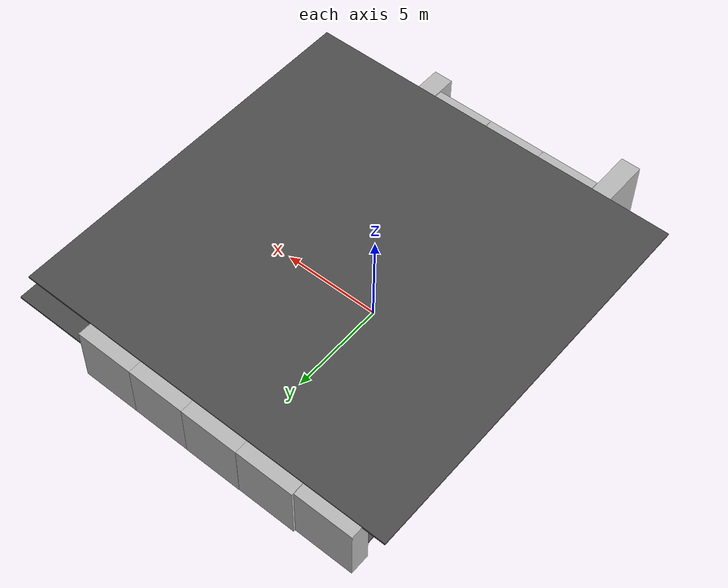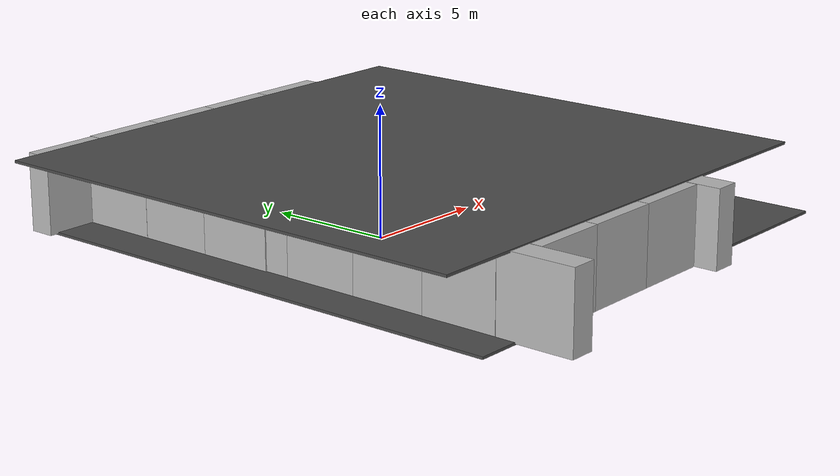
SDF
<sdf version="1.6">
 <world name="default">
  <light name="sun" type="directional">
   <pose>0 0 10 0 -0 0</pose>
   <diffuse>0.8 0.8 0.8 1</diffuse>
   <specular>0.2 0.2 0.2 1</specular>
   <attenuation>
    <range>1000</range>
    <constant>0.9</constant>
    <linear>0.01</linear>
    <quadratic>0.001</quadratic>
   </attenuation>
   <direction>-0.5 0.1 -0.9</direction>
  </light>
  <plugin name="ros_interface_plugin" filename="librotors_gazebo_ros_interface_plugin.so"/>
  <physics name="default_physics" default="0" type="ode">
   <ode>
    <solver>
     <type>quick</type>
     <iters>1000</iters>
     <sor>1.3</sor>
     <use_dynamic_moi_rescaling>0</use_dynamic_moi_rescaling>
    </solver>
    <constraints>
     <cfm>0</cfm>
     <erp>0.2</erp>
     <contact_max_correcting_vel>100</contact_max_correcting_vel>
     <contact_surface_layer>0.001</contact_surface_layer>
    </constraints>
   </ode>
   <max_step_size>0.01</max_step_size>
   <real_time_factor>1</real_time_factor>
   <real_time_update_rate>100</real_time_update_rate>
  </physics>
  <scene><ambient>0.4 0.4 0.4 1</ambient><background>0.7 0.7 0.7 1</background><shadows>1</shadows></scene>
  <spherical_coordinates>
   <surface_model>EARTH_WGS84</surface_model>
   <latitude_deg>0</latitude_deg>
   <longitude_deg>0</longitude_deg>
   <elevation>0</elevation>
   <heading_deg>0</heading_deg>
  </spherical_coordinates>
  <model name="asphalt_plane">
   <static>1</static>
   <link name="link">
    <collision name="collision"><geometry><box><size>20 20 0.1</size></box></geometry></collision>
    <visual name="visual">
     <cast_shadows>0</cast_shadows>
     <geometry><box><size>20 20 0.1</size></box></geometry>
     <material>
      <script>
       <uri>model://asphalt_plane/materials/scripts</uri>
       <uri>model://asphalt_plane/materials/textures</uri>
       <name>vrc/asphalt</name>
      </script>
     </material>
    </visual>
    <velocity_decay><linear>0</linear><angular>0</angular></velocity_decay>
   </link>
   <pose>2.83897 -0.323315 0 0 -0 0</pose>
  </model>
  <model name="brick_box_3x1x3">
   <static>1</static>
   <link name="chassis">
    <pose>0 0 1.5 0 -0 0</pose>
    <collision name="collision"><geometry><box><size>3 1 3</size></box></geometry></collision>
    <visual name="visual">
     <geometry><mesh><uri>model://brick_box_3x1x3/meshes/simple_box.dae</uri><scale>3 1 3</scale></mesh></geometry>
     <material>
      <script>
       <uri>model://brick_box_3x1x3/materials/scripts</uri>
       <uri>model://brick_box_3x1x3/materials/textures</uri>
       <name>BrickBox/Diffuse</name>
      </script>
     </material>
    </visual>
    <velocity_decay><linear>0</linear><angular>0</angular></velocity_decay>
   </link>
   <pose>0.002481 10.1046 0 0 -0 0</pose>
  </model>
  <model name="brick_box_3x1x3_0">
   <static>1</static>
   <link name="chassis">
    <pose>0 0 1.5 0 -0 0</pose>
    <collision name="collision"><geometry><box><size>3 1 3</size></box></geometry></collision>
    <visual name="visual">
     <geometry><mesh><uri>model://brick_box_3x1x3/meshes/simple_box.dae</uri><scale>3 1 3</scale></mesh></geometry>
     <material>
      <script>
       <uri>model://brick_box_3x1x3/materials/scripts</uri>
       <uri>model://brick_box_3x1x3/materials/textures</uri>
       <name>BrickBox/Diffuse</name>
      </script>
     </material>
    </visual>
    <velocity_decay><linear>0</linear><angular>0</angular></velocity_decay>
   </link>
   <pose>3 10.0982 0 0 -0 0</pose>
  </model>
  <model name="brick_box_3x1x3_1">
   <static>1</static>
   <link name="chassis">
    <pose>0 0 1.5 0 -0 0</pose>
    <collision name="collision"><geometry><box><size>3 1 3</size></box></geometry></collision>
    <visual name="visual">
     <geometry><mesh><uri>model://brick_box_3x1x3/meshes/simple_box.dae</uri><scale>3 1 3</scale></mesh></geometry>
     <material>
      <script>
       <uri>model://brick_box_3x1x3/materials/scripts</uri>
       <uri>model://brick_box_3x1x3/materials/textures</uri>
       <name>BrickBox/Diffuse</name>
      </script>
     </material>
    </visual>
    <velocity_decay><linear>0</linear><angular>0</angular></velocity_decay>
   </link>
   <pose>6 10.0991 0 0 -0 0</pose>
  </model>
  <model name="brick_box_3x1x3_2">
   <static>1</static>
   <link name="chassis">
    <pose>0 0 1.5 0 -0 0</pose>
    <collision name="collision"><geometry><box><size>3 1 3</size></box></geometry></collision>
    <visual name="visual">
     <geometry><mesh><uri>model://brick_box_3x1x3/meshes/simple_box.dae</uri><scale>3 1 3</scale></mesh></geometry>
     <material>
      <script>
       <uri>model://brick_box_3x1x3/materials/scripts</uri>
       <uri>model://brick_box_3x1x3/materials/textures</uri>
       <name>BrickBox/Diffuse</name>
      </script>
     </material>
    </visual>
    <velocity_decay><linear>0</linear><angular>0</angular></velocity_decay>
   </link>
   <pose>-3 10.0946 0 0 -0 0</pose>
  </model>
  <model name="brick_box_3x1x3_3">
   <static>1</static>
   <link name="chassis">
    <pose>0 0 1.5 0 -0 0</pose>
    <collision name="collision"><geometry><box><size>3 1 3</size></box></geometry></collision>
    <visual name="visual">
     <geometry><mesh><uri>model://brick_box_3x1x3/meshes/simple_box.dae</uri><scale>3 1 3</scale></mesh></geometry>
     <material>
      <script>
       <uri>model://brick_box_3x1x3/materials/scripts</uri>
       <uri>model://brick_box_3x1x3/materials/textures</uri>
       <name>BrickBox/Diffuse</name>
      </script>
     </material>
    </visual>
    <velocity_decay><linear>0</linear><angular>0</angular></velocity_decay>
   </link>
   <pose>-6.01621 10.0015 0 0 -0 0</pose>
  </model>
  <model name="brick_box_3x1x3_4">
   <static>1</static>
   <link name="chassis">
    <pose>0 0 1.5 0 -0 0</pose>
    <collision name="collision"><geometry><box><size>3 1 3</size></box></geometry></collision>
    <visual name="visual">
     <geometry><mesh><uri>model://brick_box_3x1x3/meshes/simple_box.dae</uri><scale>3 1 3</scale></mesh></geometry>
     <material>
      <script>
       <uri>model://brick_box_3x1x3/materials/scripts</uri>
       <uri>model://brick_box_3x1x3/materials/textures</uri>
       <name>BrickBox/Diffuse</name>
      </script>
     </material>
    </visual>
    <velocity_decay><linear>0</linear><angular>0</angular></velocity_decay>
   </link>
   <pose>-3.99077 -0.014816 0 0 -0 0</pose>
  </model>
  <model name="brick_box_3x1x3_5">
   <static>1</static>
   <link name="chassis">
    <pose>0 0 1.5 0 -0 0</pose>
    <collision name="collision"><geometry><box><size>3 1 3</size></box></geometry></collision>
    <visual name="visual">
     <geometry><mesh><uri>model://brick_box_3x1x3/meshes/simple_box.dae</uri><scale>3 1 3</scale></mesh></geometry>
     <material>
      <script>
       <uri>model://brick_box_3x1x3/materials/scripts</uri>
       <uri>model://brick_box_3x1x3/materials/textures</uri>
       <name>BrickBox/Diffuse</name>
      </script>
     </material>
    </visual>
    <velocity_decay><linear>0</linear><angular>0</angular></velocity_decay>
   </link>
   <pose>3.01364 -10.0515 0 0 -0 0</pose>
  </model>
  <model name="brick_box_3x1x3_6">
   <static>1</static>
   <link name="chassis">
    <pose>0 0 1.5 0 -0 0</pose>
    <collision name="collision"><geometry><box><size>3 1 3</size></box></geometry></collision>
    <visual name="visual">
     <geometry><mesh><uri>model://brick_box_3x1x3/meshes/simple_box.dae</uri><scale>3 1 3</scale></mesh></geometry>
     <material>
      <script>
       <uri>model://brick_box_3x1x3/materials/scripts</uri>
       <uri>model://brick_box_3x1x3/materials/textures</uri>
       <name>BrickBox/Diffuse</name>
      </script>
     </material>
    </visual>
    <velocity_decay><linear>0</linear><angular>0</angular></velocity_decay>
   </link>
   <pose>0.004603 -10.0577 0 0 -0 0</pose>
  </model>
  <model name="brick_box_3x1x3_7">
   <static>1</static>
   <link name="chassis">
    <pose>0 0 1.5 0 -0 0</pose>
    <collision name="collision"><geometry><box><size>3 1 3</size></box></geometry></collision>
    <visual name="visual">
     <geometry><mesh><uri>model://brick_box_3x1x3/meshes/simple_box.dae</uri><scale>3 1 3</scale></mesh></geometry>
     <material>
      <script>
       <uri>model://brick_box_3x1x3/materials/scripts</uri>
       <uri>model://brick_box_3x1x3/materials/textures</uri>
       <name>BrickBox/Diffuse</name>
      </script>
     </material>
    </visual>
    <velocity_decay><linear>0</linear><angular>0</angular></velocity_decay>
   </link>
   <pose>-3.00793 -10.0682 0 0 -0 0</pose>
  </model>
  <model name="brick_box_3x1x3_9">
   <static>1</static>
   <link name="chassis">
    <pose>0 0 1.5 0 -0 0</pose>
    <collision name="collision"><geometry><box><size>3 1 3</size></box></geometry></collision>
    <visual name="visual">
     <geometry><mesh><uri>model://brick_box_3x1x3/meshes/simple_box.dae</uri><scale>3 1 3</scale></mesh></geometry>
     <material>
      <script>
       <uri>model://brick_box_3x1x3/materials/scripts</uri>
       <uri>model://brick_box_3x1x3/materials/textures</uri>
       <name>BrickBox/Diffuse</name>
      </script>
     </material>
    </visual>
    <velocity_decay><linear>0</linear><angular>0</angular></velocity_decay>
   </link>
   <pose>-5.01304 7.99444 0 0 -0 1.57</pose>
  </model>
  <model name="brick_box_3x1x3_10">
   <static>1</static>
   <link name="chassis">
    <pose>0 0 1.5 0 -0 0</pose>
    <collision name="collision"><geometry><box><size>3 1 3</size></box></geometry></collision>
    <visual name="visual">
     <geometry><mesh><uri>model://brick_box_3x1x3/meshes/simple_box.dae</uri><scale>3 1 3</scale></mesh></geometry>
     <material>
      <script>
       <uri>model://brick_box_3x1x3/materials/scripts</uri>
       <uri>model://brick_box_3x1x3/materials/textures</uri>
       <name>BrickBox/Diffuse</name>
      </script>
     </material>
    </visual>
    <velocity_decay><linear>0</linear><angular>0</angular></velocity_decay>
   </link>
   <pose>-5.01976 4.98747 0 0 -0 1.57</pose>
  </model>
  <model name="brick_box_3x1x3_11">
   <static>1</static>
   <link name="chassis">
    <pose>0 0 1.5 0 -0 0</pose>
    <collision name="collision"><geometry><box><size>3 1 3</size></box></geometry></collision>
    <visual name="visual">
     <geometry><mesh><uri>model://brick_box_3x1x3/meshes/simple_box.dae</uri><scale>3 1 3</scale></mesh></geometry>
     <material>
      <script>
       <uri>model://brick_box_3x1x3/materials/scripts</uri>
       <uri>model://brick_box_3x1x3/materials/textures</uri>
       <name>BrickBox/Diffuse</name>
      </script>
     </material>
    </visual>
    <velocity_decay><linear>0</linear><angular>0</angular></velocity_decay>
   </link>
   <pose>-5.03373 1.98566 0 0 -0 1.57</pose>
  </model>
  <model name="brick_box_3x1x3_12">
   <static>1</static>
   <link name="chassis">
    <pose>0 0 1.5 0 -0 0</pose>
    <collision name="collision"><geometry><box><size>3 1 3</size></box></geometry></collision>
    <visual name="visual">
     <geometry><mesh><uri>model://brick_box_3x1x3/meshes/simple_box.dae</uri><scale>3 1 3</scale></mesh></geometry>
     <material>
      <script>
       <uri>model://brick_box_3x1x3/materials/scripts</uri>
       <uri>model://brick_box_3x1x3/materials/textures</uri>
       <name>BrickBox/Diffuse</name>
      </script>
     </material>
    </visual>
    <velocity_decay><linear>0</linear><angular>0</angular></velocity_decay>
   </link>
   <pose>-5.00839 -2.02595 0 0 -0 1.57</pose>
  </model>
  <model name="brick_box_3x1x3_13">
   <static>1</static>
   <link name="chassis">
    <pose>0 0 1.5 0 -0 0</pose>
    <collision name="collision"><geometry><box><size>3 1 3</size></box></geometry></collision>
    <visual name="visual">
     <geometry><mesh><uri>model://brick_box_3x1x3/meshes/simple_box.dae</uri><scale>3 1 3</scale></mesh></geometry>
     <material>
      <script>
       <uri>model://brick_box_3x1x3/materials/scripts</uri>
       <uri>model://brick_box_3x1x3/materials/textures</uri>
       <name>BrickBox/Diffuse</name>
      </script>
     </material>
    </visual>
    <velocity_decay><linear>0</linear><angular>0</angular></velocity_decay>
   </link>
   <pose>-5.00971 -5.02536 0 0 -0 1.57</pose>
  </model>
  <model name="brick_box_3x1x3_14">
   <static>1</static>
   <link name="chassis">
    <pose>0 0 1.5 0 -0 0</pose>
    <collision name="collision"><geometry><box><size>3 1 3</size></box></geometry></collision>
    <visual name="visual">
     <geometry><mesh><uri>model://brick_box_3x1x3/meshes/simple_box.dae</uri><scale>3 1 3</scale></mesh></geometry>
     <material>
      <script>
       <uri>model://brick_box_3x1x3/materials/scripts</uri>
       <uri>model://brick_box_3x1x3/materials/textures</uri>
       <name>BrickBox/Diffuse</name>
      </script>
     </material>
    </visual>
    <velocity_decay><linear>0</linear><angular>0</angular></velocity_decay>
   </link>
   <pose>5.09523 8.10064 0 0 -0 1.57</pose>
  </model>
  <model name="brick_box_3x1x3_15">
   <static>1</static>
   <link name="chassis">
    <pose>0 0 1.5 0 -0 0</pose>
    <collision name="collision"><geometry><box><size>3 1 3</size></box></geometry></collision>
    <visual name="visual">
     <geometry><mesh><uri>model://brick_box_3x1x3/meshes/simple_box.dae</uri><scale>3 1 3</scale></mesh></geometry>
     <material>
      <script>
       <uri>model://brick_box_3x1x3/materials/scripts</uri>
       <uri>model://brick_box_3x1x3/materials/textures</uri>
       <name>BrickBox/Diffuse</name>
      </script>
     </material>
    </visual>
    <velocity_decay><linear>0</linear><angular>0</angular></velocity_decay>
   </link>
   <pose>5.08678 5.0809 0 0 -0 1.57</pose>
  </model>
  <model name="brick_box_3x1x3_16">
   <static>1</static>
   <link name="chassis">
    <pose>0 0 1.5 0 -0 0</pose>
    <collision name="collision"><geometry><box><size>3 1 3</size></box></geometry></collision>
    <visual name="visual">
     <geometry><mesh><uri>model://brick_box_3x1x3/meshes/simple_box.dae</uri><scale>3 1 3</scale></mesh></geometry>
     <material>
      <script>
       <uri>model://brick_box_3x1x3/materials/scripts</uri>
       <uri>model://brick_box_3x1x3/materials/textures</uri>
       <name>BrickBox/Diffuse</name>
      </script>
     </material>
    </visual>
    <velocity_decay><linear>0</linear><angular>0</angular></velocity_decay>
   </link>
   <pose>5.0709 2.0699 0 0 -0 1.57</pose>
  </model>
  <model name="brick_box_3x1x3_17">
   <static>1</static>
   <link name="chassis">
    <pose>0 0 1.5 0 -0 0</pose>
    <collision name="collision"><geometry><box><size>3 1 3</size></box></geometry></collision>
    <visual name="visual">
     <geometry><mesh><uri>model://brick_box_3x1x3/meshes/simple_box.dae</uri><scale>3 1 3</scale></mesh></geometry>
     <material>
      <script>
       <uri>model://brick_box_3x1x3/materials/scripts</uri>
       <uri>model://brick_box_3x1x3/materials/textures</uri>
       <name>BrickBox/Diffuse</name>
      </script>
     </material>
    </visual>
    <velocity_decay><linear>0</linear><angular>0</angular></velocity_decay>
   </link>
   <pose>5.06878 -0.929649 0 0 -0 1.57</pose>
  </model>
  <model name="brick_box_3x1x3_18">
   <static>1</static>
   <link name="chassis">
    <pose>0 0 1.5 0 -0 0</pose>
    <collision name="collision"><geometry><box><size>3 1 3</size></box></geometry></collision>
    <visual name="visual">
     <geometry><mesh><uri>model://brick_box_3x1x3/meshes/simple_box.dae</uri><scale>3 1 3</scale></mesh></geometry>
     <material>
      <script>
       <uri>model://brick_box_3x1x3/materials/scripts</uri>
       <uri>model://brick_box_3x1x3/materials/textures</uri>
       <name>BrickBox/Diffuse</name>
      </script>
     </material>
    </visual>
    <velocity_decay><linear>0</linear><angular>0</angular></velocity_decay>
   </link>
   <pose>5.07576 -3.94149 0 0 -0 1.57</pose>
  </model>
  <model name="brick_box_3x1x3_19">
   <static>1</static>
   <link name="chassis">
    <pose>0 0 1.5 0 -0 0</pose>
    <collision name="collision"><geometry><box><size>3 1 3</size></box></geometry></collision>
    <visual name="visual">
     <geometry><mesh><uri>model://brick_box_3x1x3/meshes/simple_box.dae</uri><scale>3 1 3</scale></mesh></geometry>
     <material>
      <script>
       <uri>model://brick_box_3x1x3/materials/scripts</uri>
       <uri>model://brick_box_3x1x3/materials/textures</uri>
       <name>BrickBox/Diffuse</name>
      </script>
     </material>
    </visual>
    <velocity_decay><linear>0</linear><angular>0</angular></velocity_decay>
   </link>
   <pose>3.08548 6.0255 0 0 -0 0</pose>
  </model>
  <model name="brick_box_3x1x3_20">
   <static>1</static>
   <link name="chassis">
    <pose>0 0 1.5 0 -0 0</pose>
    <collision name="collision"><geometry><box><size>3 1 3</size></box></geometry></collision>
    <visual name="visual">
     <geometry><mesh><uri>model://brick_box_3x1x3/meshes/simple_box.dae</uri><scale>3 1 3</scale></mesh></geometry>
     <material>
      <script>
       <uri>model://brick_box_3x1x3/materials/scripts</uri>
       <uri>model://brick_box_3x1x3/materials/textures</uri>
       <name>BrickBox/Diffuse</name>
      </script>
     </material>
    </visual>
    <velocity_decay><linear>0</linear><angular>0</angular></velocity_decay>
   </link>
   <pose>0.082479 6.02585 0 0 -0 0</pose>
  </model>
  <model name="brick_box_3x1x3_21">
   <static>1</static>
   <link name="chassis">
    <pose>0 0 1.5 0 -0 0</pose>
    <collision name="collision"><geometry><box><size>3 1 3</size></box></geometry></collision>
    <visual name="visual">
     <geometry><mesh><uri>model://brick_box_3x1x3/meshes/simple_box.dae</uri><scale>3 1 3</scale></mesh></geometry>
     <material>
      <script>
       <uri>model://brick_box_3x1x3/materials/scripts</uri>
       <uri>model://brick_box_3x1x3/materials/textures</uri>
       <name>BrickBox/Diffuse</name>
      </script>
     </material>
    </visual>
    <velocity_decay><linear>0</linear><angular>0</angular></velocity_decay>
   </link>
   <pose>-2.0181 1.53472 0 0 -0 1.57</pose>
  </model>
  <model name="asphalt_plane_0">
   <static>1</static>
   <link name="link">
    <collision name="collision"><geometry><box><size>20 20 0.1</size></box></geometry></collision>
    <visual name="visual">
     <cast_shadows>0</cast_shadows>
     <geometry><box><size>20 20 0.1</size></box></geometry>
     <material>
      <script>
       <uri>model://asphalt_plane/materials/scripts</uri>
       <uri>model://asphalt_plane/materials/textures</uri>
       <name>vrc/asphalt</name>
      </script>
     </material>
    </visual>
    <velocity_decay><linear>0</linear><angular>0</angular></velocity_decay>
   </link>
   <pose>1.34098 -0.100478 3 0 -0 0</pose>
  </model>
  <gravity>0 0 -9.8</gravity>
  <magnetic_field>6e-06 2.3e-05 -4.2e-05</magnetic_field>
  <atmosphere type="adiabatic"/>
  <audio><device>default</device></audio>
  <model name="brick_box_3x1x3_13_clone">
   <static>1</static>
   <link name="chassis">
    <pose>0 0 1.5 0 -0 0</pose>
    <collision name="collision"><geometry><box><size>3 1 3</size></box></geometry></collision>
    <visual name="visual">
     <geometry><mesh><uri>model://brick_box_3x1x3/meshes/simple_box.dae</uri><scale>3 1 3</scale></mesh></geometry>
     <material>
      <script>
       <uri>model://brick_box_3x1x3/materials/scripts</uri>
       <uri>model://brick_box_3x1x3/materials/textures</uri>
       <name>BrickBox/Diffuse</name>
      </script>
     </material>
    </visual>
    <velocity_decay><linear>0</linear><angular>0</angular></velocity_decay>
   </link>
   <pose>-5.02518 -8.03452 0 0 -0 1.57</pose>
  </model>
  <model name="brick_box_3x1x3_13_clone_0">
   <static>1</static>
   <link name="chassis">
    <pose>0 0 1.5 0 -0 0</pose>
    <collision name="collision"><geometry><box><size>3 1 3</size></box></geometry></collision>
    <visual name="visual">
     <geometry><mesh><uri>model://brick_box_3x1x3/meshes/simple_box.dae</uri><scale>3 1 3</scale></mesh></geometry>
     <material>
      <script>
       <uri>model://brick_box_3x1x3/materials/scripts</uri>
       <uri>model://brick_box_3x1x3/materials/textures</uri>
       <name>BrickBox/Diffuse</name>
      </script>
     </material>
    </visual>
    <velocity_decay><linear>0</linear><angular>0</angular></velocity_decay>
   </link>
   <pose>5.06702 -6.94569 0 0 -0 1.57</pose>
  </model>
  <model name="brick_box_3x1x3_13_clone_1">
   <static>1</static>
   <link name="chassis">
    <pose>0 0 1.5 0 -0 0</pose>
    <collision name="collision"><geometry><box><size>3 1 3</size></box></geometry></collision>
    <visual name="visual">
     <geometry><mesh><uri>model://brick_box_3x1x3/meshes/simple_box.dae</uri><scale>3 1 3</scale></mesh></geometry>
     <material>
      <script>
       <uri>model://brick_box_3x1x3/materials/scripts</uri>
       <uri>model://brick_box_3x1x3/materials/textures</uri>
       <name>BrickBox/Diffuse</name>
      </script>
     </material>
    </visual>
    <velocity_decay><linear>0</linear><angular>0</angular></velocity_decay>
   </link>
   <pose>-5.03627 -11.0535 0 0 -0 1.57</pose>
  </model>
  <model name="brick_box_3x1x3_13_clone_2">
   <static>1</static>
   <link name="chassis">
    <pose>0 0 1.5 0 -0 0</pose>
    <collision name="collision"><geometry><box><size>3 1 3</size></box></geometry></collision>
    <visual name="visual">
     <geometry><mesh><uri>model://brick_box_3x1x3/meshes/simple_box.dae</uri><scale>3 1 3</scale></mesh></geometry>
     <material>
      <script>
       <uri>model://brick_box_3x1x3/materials/scripts</uri>
       <uri>model://brick_box_3x1x3/materials/textures</uri>
       <name>BrickBox/Diffuse</name>
      </script>
     </material>
    </visual>
    <velocity_decay><linear>0</linear><angular>0</angular></velocity_decay>
   </link>
   <pose>5.05241 -9.94598 0 0 -0 1.57</pose>
  </model>
  <model name="brick_box_3x1x3_13_clone_3">
   <static>1</static>
   <link name="chassis">
    <pose>0 0 1.5 0 -0 0</pose>
    <collision name="collision"><geometry><box><size>3 1 3</size></box></geometry></collision>
    <visual name="visual">
     <geometry><mesh><uri>model://brick_box_3x1x3/meshes/simple_box.dae</uri><scale>3 1 3</scale></mesh></geometry>
     <material>
      <script>
       <uri>model://brick_box_3x1x3/materials/scripts</uri>
       <uri>model://brick_box_3x1x3/materials/textures</uri>
       <name>BrickBox/Diffuse</name>
      </script>
     </material>
    </visual>
    <velocity_decay><linear>0</linear><angular>0</angular></velocity_decay>
   </link>
   <pose>-2.02134 -1.4822 0 0 -0 1.57</pose>
  </model>
  <model name="brick_box_3x1x3_13_clone_4">
   <static>1</static>
   <link name="chassis">
    <pose>0 0 1.5 0 -0 0</pose>
    <collision name="collision"><geometry><box><size>3 1 3</size></box></geometry></collision>
    <visual name="visual">
     <geometry><mesh><uri>model://brick_box_3x1x3/meshes/simple_box.dae</uri><scale>3 1 3</scale></mesh></geometry>
     <material>
      <script>
       <uri>model://brick_box_3x1x3/materials/scripts</uri>
       <uri>model://brick_box_3x1x3/materials/textures</uri>
       <name>BrickBox/Diffuse</name>
      </script>
     </material>
    </visual>
    <velocity_decay><linear>0</linear><angular>0</angular></velocity_decay>
   </link>
   <pose>2.05835 -1.49386 0 0 -0 1.57</pose>
  </model>
  <model name="brick_box_3x1x3_4_clone">
   <static>1</static>
   <link name="chassis">
    <pose>0 0 1.5 0 -0 0</pose>
    <collision name="collision"><geometry><box><size>3 1 3</size></box></geometry></collision>
    <visual name="visual">
     <geometry><mesh><uri>model://brick_box_3x1x3/meshes/simple_box.dae</uri><scale>3 1 3</scale></mesh></geometry>
     <material>
      <script>
       <uri>model://brick_box_3x1x3/materials/scripts</uri>
       <uri>model://brick_box_3x1x3/materials/textures</uri>
       <name>BrickBox/Diffuse</name>
      </script>
     </material>
    </visual>
    <velocity_decay><linear>0</linear><angular>0</angular></velocity_decay>
   </link>
   <pose>3.05708 -6.4966 0 0 -0 0</pose>
  </model>
  <model name="brick_box_3x1x3_13_clone_3_clone">
   <static>1</static>
   <link name="chassis">
    <pose>0 0 1.5 0 -0 0</pose>
    <collision name="collision"><geometry><box><size>3 1 3</size></box></geometry></collision>
    <visual name="visual">
     <geometry><mesh><uri>model://brick_box_3x1x3/meshes/simple_box.dae</uri><scale>3 1 3</scale></mesh></geometry>
     <material>
      <script>
       <uri>model://brick_box_3x1x3/materials/scripts</uri>
       <uri>model://brick_box_3x1x3/materials/textures</uri>
       <name>BrickBox/Diffuse</name>
      </script>
     </material>
    </visual>
    <velocity_decay><linear>0</linear><angular>0</angular></velocity_decay>
   </link>
   <pose>2.05929 -4.5013 0 0 -0 1.57</pose>
  </model>
 </world>
</sdf>
